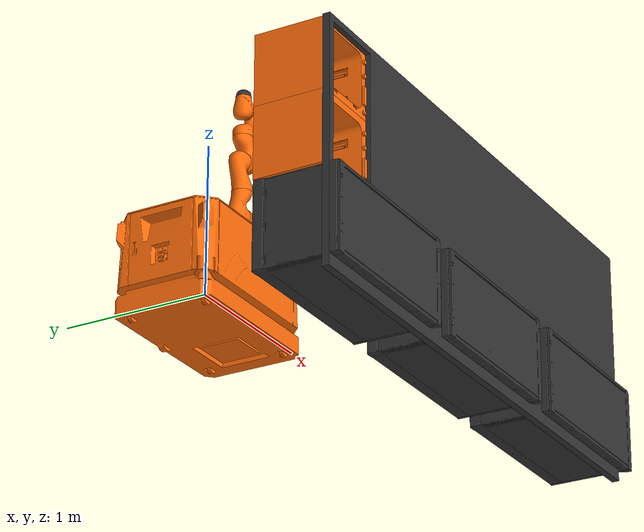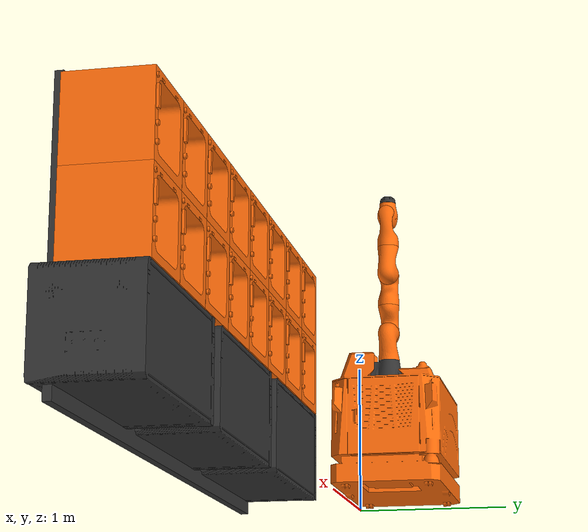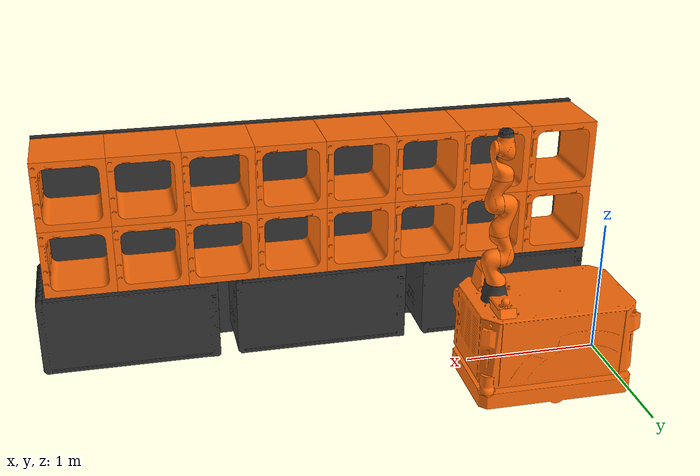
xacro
<?xml version="1.0"?>
<robot xmlns:xacro="http://www.ros.org/wiki/xacro"
       name="origins_base_scene" >
  <!-- X="0" Y="0.98" Z="0.08" r="0" p="-1.57" y="-1.57 This is the main file defining our robot arrangement and physical environment. -->
  <xacro:arg name="taskboard" default="false"/>
  <xacro:arg name="gazebo" default="false"/>

  <link name="origins_ground" />

  <xacro:include filename="$(find iiwa_description)/urdf/incubator.xacro" />
  <xacro:incubator prefix="2" connected_to="origins_ground" X="0" Y="-0.3" Z="1.69" r="0.0" p="1.57" y="0.0"/>
  <xacro:incubator prefix="4" connected_to="origins_ground" X="2" Y="-0.3" Z="1.69" r="0.0" p="1.57" y="0.0"/>

  <!--correct-->

  <xacro:include filename="$(find iiwa_description)/urdf/console.xacro" />
  <xacro:console prefix="2" connected_to="origins_ground" X="0" Y="-0.92" Z="0.08" r="0" p="-1.57" y="-1.57"/>

  <xacro:include filename="$(find iiwa_description)/urdf/right_panel.xacro" />
  <xacro:right_panel prefix="1" connected_to="origins_ground" X="0" Y="-0.8" Z="0" r="0" p="0" y="-1.57"/>

  <xacro:include filename="$(find iiwa_description)/urdf/amr.xacro" />
  <xacro:amr connected_to="origins_ground"/>

  <!-- Import Rviz colors -->
  <xacro:include filename="$(find iiwa_description)/urdf/materials.xacro" />
  <!--Import the lbr iiwa macro -->
  <xacro:include filename="$(find iiwa_description)/urdf/iiwa7.xacro"/>

  <xacro:arg name="hardware_interface" default="PositionJointInterface"/>
  <xacro:arg name="robot_name" default="iiwa"/>
  <xacro:arg name="origin_xyz" default="0.96 0.36 0.67"/>
  <xacro:arg name="origin_rpy" default="0 0 1.57"/>

  <!--iiwa-->
  <xacro:iiwa7 hardware_interface="$(arg hardware_interface)" robot_name="$(arg robot_name)" parent="amr_link">
    <origin xyz="$(arg origin_xyz)" rpy="$(arg origin_rpy)" />
  </xacro:iiwa7>

  <!-- The "world" link definition should be removed, but apparently it is necessary for Gazebo -->
  <link name="world" />
  <joint name="world_joint" type="fixed">
    <parent link="world" />
    <child link="origins_ground" />
    <origin xyz="0.0 0.0 0.0" rpy="0.0 0.0 0.0" />
  </joint>
  <gazebo>
      <plugin name="gazebo_ros_control" filename="libgazebo_ros_control.so">
        <robotNamespace>/</robotNamespace>
        <robotSimType>gazebo_ros_control/DefaultRobotHWSim</robotSimType>
      </plugin>
    </gazebo>

</robot>

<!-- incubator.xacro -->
<robot xmlns:xacro="https://ros.org/wiki/xacro">
  <!-- Here we define the 2 parameters of the macro -->
  <xacro:macro name="incubator" params="prefix connected_to X Y Z r p y">

    <!-- Create a fixed joint with a parameterized name. -->
    <joint name="${prefix}_incubator_joint0" type="fixed">
      <!-- The parent link must be read from the robot model it is attached to. -->
      <parent link="${connected_to}"/>
      <child link="${prefix}_incubator_link0"/>
      <!-- The tool is directly attached to the flange. -->
      <origin rpy="${r} ${p} ${y}" xyz="${X} ${Y} ${Z}"/>
    </joint>
    <link name="${prefix}_incubator_link0">
      <visual>
        <geometry>
          <!-- The path to the visual meshes in the package. -->
          <mesh filename="package://iiwa_description/meshes/Part1.STL"/>
        </geometry>
        <origin rpy="1.57 0 0" xyz="0 0 0"/>
        <material name="Orange"/>
      </visual>
      <collision>
        <geometry>
          <mesh filename="package://iiwa_description/meshes/Part1.STL"/>
        </geometry>
        <origin rpy="1.57 0 0" xyz="0 0 0"/>
      </collision>
    </link>

    <joint name="${prefix}_incubator_joint1" type="fixed">
      <!-- The parent link must be read from the robot model it is attached to. -->
      <parent link="${prefix}_incubator_link0"/>
      <child link="${prefix}_incubator_link1"/>
      <!-- The tool is directly attached to the flange. -->
    </joint>
    <link name="${prefix}_incubator_link1">
      <visual>
        <geometry>
          <!-- The path to the visual meshes in the package. -->
          <mesh filename="package://iiwa_description/meshes/Part1.STL"/>
        </geometry>
        <origin rpy="1.57 0 0" xyz="0 0 0.5"/>
        <material name="Orange"/>
      </visual>
      <collision>
        <geometry>
          <mesh filename="package://iiwa_description/meshes/Part1.STL"/>
        </geometry>
        <origin rpy="1.57 0 0" xyz="0 0 0.5"/>
      </collision>
    </link>

    <joint name="${prefix}_incubator_joint2" type="fixed">
      <!-- The parent link must be read from the robot model it is attached to. -->
      <parent link="${prefix}_incubator_link1"/>
      <child link="${prefix}_incubator_link2"/>
      <!-- The tool is directly attached to the flange. -->
    </joint>
    <link name="${prefix}_incubator_link2">
      <visual>
        <geometry>
          <!-- The path to the visual meshes in the package. -->
          <mesh filename="package://iiwa_description/meshes/Part1.STL"/>
        </geometry>
        <origin rpy="1.57 0 0" xyz="0 0 1"/>
        <material name="Orange"/>
      </visual>
      <collision>
        <geometry>
          <mesh filename="package://iiwa_description/meshes/Part1.STL"/>
        </geometry>
        <origin rpy="1.57 0 0" xyz="0 0 1"/>
      </collision>
    </link>

    <joint name="${prefix}_incubator_joint3" type="fixed">
      <!-- The parent link must be read from the robot model it is attached to. -->
      <parent link="${prefix}_incubator_link2"/>
      <child link="${prefix}_incubator_link3"/>
      <!-- The tool is directly attached to the flange. -->
    </joint>
    <link name="${prefix}_incubator_link3">
      <visual>
        <geometry>
          <!-- The path to the visual meshes in the package. -->
          <mesh filename="package://iiwa_description/meshes/Part1.STL"/>
        </geometry>
        <origin rpy="1.57 0 0" xyz="0 0 1.5"/>
        <material name="Orange"/>
      </visual>
      <collision>
        <geometry>
          <mesh filename="package://iiwa_description/meshes/Part1.STL"/>
        </geometry>
        <origin rpy="1.57 0 0" xyz="0 0 1.5"/>
      </collision>
    </link>

    <joint name="${prefix}_incubator_joint4" type="fixed">
      <!-- The parent link must be read from the robot model it is attached to. -->
      <parent link="${prefix}_incubator_link3"/>
      <child link="${prefix}_incubator_link4"/>
      <!-- The tool is directly attached to the flange. -->
    </joint>
    <link name="${prefix}_incubator_link4">
      <visual>
        <geometry>
          <!-- The path to the visual meshes in the package. -->
          <mesh filename="package://iiwa_description/meshes/Part1.STL"/>
        </geometry>
        <origin rpy="1.57 0 0" xyz="0.5 0 1.5"/>
        <material name="Orange"/>
      </visual>
      <collision>
        <geometry>
          <mesh filename="package://iiwa_description/meshes/Part1.STL"/>
        </geometry>
        <origin rpy="1.57 0 0" xyz="0.5 0 1.5"/>
      </collision>
    </link>

    <joint name="${prefix}_incubator_joint5" type="fixed">
      <!-- The parent link must be read from the robot model it is attached to. -->
      <parent link="${prefix}_incubator_link4"/>
      <child link="${prefix}_incubator_link5"/>
      <!-- The tool is directly attached to the flange. -->
    </joint>
    <link name="${prefix}_incubator_link5">
      <visual>
        <geometry>
          <!-- The path to the visual meshes in the package. -->
          <mesh filename="package://iiwa_description/meshes/Part1.STL"/>
        </geometry>
        <origin rpy="1.57 0 0" xyz="0.5 0 1"/>
        <material name="Orange"/>
      </visual>
      <collision>
        <geometry>
          <mesh filename="package://iiwa_description/meshes/Part1.STL"/>
        </geometry>
        <origin rpy="1.57 0 0" xyz="0.5 0 1"/>
      </collision>
    </link>

    <joint name="${prefix}_incubator_joint6" type="fixed">
      <!-- The parent link must be read from the robot model it is attached to. -->
      <parent link="${prefix}_incubator_link5"/>
      <child link="${prefix}_incubator_link6"/>
      <!-- The tool is directly attached to the flange. -->
    </joint>
    <link name="${prefix}_incubator_link6">
      <visual>
        <geometry>
          <!-- The path to the visual meshes in the package. -->
          <mesh filename="package://iiwa_description/meshes/Part1.STL"/>
        </geometry>
        <origin rpy="1.57 0 0" xyz="0.5 0 0.5"/>
        <material name="Orange"/>
      </visual>
      <collision>
        <geometry>
          <mesh filename="package://iiwa_description/meshes/Part1.STL"/>
        </geometry>
        <origin rpy="1.57 0 0" xyz="0.5 0 0.5"/>
      </collision>
    </link>

    <joint name="${prefix}_incubator_joint7" type="fixed">
      <!-- The parent link must be read from the robot model it is attached to. -->
      <parent link="${prefix}_incubator_link6"/>
      <child link="${prefix}_incubator_link7"/>
      <!-- The tool is directly attached to the flange. -->
    </joint>
    <link name="${prefix}_incubator_link7">
      <visual>
        <geometry>
          <!-- The path to the visual meshes in the package. -->
          <mesh filename="package://iiwa_description/meshes/Part1.STL"/>
        </geometry>
        <origin rpy="1.57 0 0" xyz="0.5 0 0"/>
        <material name="Orange"/>
      </visual>
      <collision>
        <geometry>
          <mesh filename="package://iiwa_description/meshes/Part1.STL"/>
        </geometry>
        <origin rpy="1.57 0 0" xyz="0.5 0 0"/>
      </collision>
    </link>

  </xacro:macro>
</robot>

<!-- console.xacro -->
<robot xmlns:xacro="https://ros.org/wiki/xacro">
  <!-- Here we define the 2 parameters of the macro -->
  <xacro:macro name="console" params="prefix connected_to X Y Z r p y">

    <!-- Create a fixed joint with a parameterized name. -->
    <joint name="${prefix}_console_joint0" type="fixed">
      <!-- The parent link must be read from the robot model it is attached to. -->
      <parent link="${connected_to}"/>
      <child link="${prefix}_console_link0"/>
      <!-- The tool is directly attached to the flange. -->
      <origin rpy="${r} ${p} ${y}" xyz="${X} ${Y} ${Z}"/>
    </joint>
    <link name="${prefix}_console_link0">
      <visual>
        <geometry>
          <!-- The path to the visual meshes in the package. -->
          <mesh filename="package://iiwa_description/meshes/supercomputer.STL"/>
        </geometry>
        <origin rpy="0 0 0" xyz="0 0 0"/>
        <material name="Grey"/>
      </visual>
      <collision>
        <geometry>
          <mesh filename="package://iiwa_description/meshes/supercomputer.STL"/>
        </geometry>
      </collision>
    </link>

    <joint name="${prefix}_console_joint1" type="fixed">
      <!-- The parent link must be read from the robot model it is attached to. -->
      <parent link="${prefix}_console_link0"/>
      <child link="${prefix}_console_link1"/>
      <!-- The tool is directly attached to the flange. -->
    </joint>
    <link name="${prefix}_console_link1">
      <visual>
        <geometry>
          <!-- The path to the visual meshes in the package. -->
          <mesh filename="package://iiwa_description/meshes/supercomputer.STL"/>
        </geometry>
        <origin rpy="0 0 0" xyz="0 1.4 0"/>
        <material name="Grey"/>
      </visual>
      <collision>
        <geometry>
          <mesh filename="package://iiwa_description/meshes/supercomputer.STL"/>
        </geometry>
      </collision>
    </link>

    <joint name="${prefix}_console_joint2" type="fixed">
      <!-- The parent link must be read from the robot model it is attached to. -->
      <parent link="${prefix}_console_link1"/>
      <child link="${prefix}_console_link2"/>
      <!-- The tool is directly attached to the flange. -->
    </joint>
    <link name="${prefix}_console_link2">
      <visual>
        <geometry>
          <!-- The path to the visual meshes in the package. -->
          <mesh filename="package://iiwa_description/meshes/supercomputer.STL"/>
        </geometry>
        <origin rpy="0 0 0" xyz="0 2.8 0"/>
        <material name="Grey"/>
      </visual>
      <collision>
        <geometry>
          <mesh filename="package://iiwa_description/meshes/supercomputer.STL"/>
        </geometry>
      </collision>
    </link>

  </xacro:macro>
</robot>

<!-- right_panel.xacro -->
<robot xmlns:xacro="https://ros.org/wiki/xacro">
  <!-- Here we define the 2 parameters of the macro -->
  <xacro:macro name="right_panel" params="prefix connected_to X Y Z r p y">

    <!-- Create a fixed joint with a parameterized name. -->
    <joint name="${prefix}_right_panel_joint" type="fixed">
      <!-- The parent link must be read from the robot model it is attached to. -->
      <parent link="${connected_to}"/>
      <child link="${prefix}_right_panel_link"/>
      <!-- The tool is directly attached to the flange. -->
      <origin rpy="${r} ${p} ${y}" xyz="${X} ${Y} ${Z}"/>
    </joint>

    <link name="${prefix}_right_panel_link">
      <visual>
        <geometry>
          <!-- The path to the visual meshes in the package. -->
          <mesh filename="package://iiwa_description/meshes/right_panel.stl"/>
        </geometry>
        <origin rpy="0 0 0" xyz="0 0 0"/>
        <material name="Grey"/>
      </visual>
      <collision>
        <geometry>
          <mesh filename="package://iiwa_description/meshes/right_panel.stl"/>
        </geometry>
      </collision>
    </link>
  </xacro:macro>
</robot>

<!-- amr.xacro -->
<robot xmlns:xacro="https://ros.org/wiki/xacro">
  <!-- Here we define the 2 parameters of the macro -->
  <xacro:macro name="amr" params="connected_to">

    <!-- Create a fixed joint with a parameterized name. -->
    <joint name="amr_joint" type="prismatic">
      <!-- The parent link must be read from the robot model it is attached to. -->
      <parent link="${connected_to}"/>
      <child link="amr_link"/>
      <!-- The tool is directly attached to the flange. -->
      <origin rpy="0 0 0" xyz="0 0 0"/>
      <limit effort="2000.0" lower="-10" upper="10" velocity="0.5"/>
    </joint>
    <link name="amr_link">
      <visual>
        <geometry>
          <!-- The path to the visual meshes in the package. -->
          <mesh filename="package://iiwa_description/meshes/kuka_amr.STL"/>
        </geometry>
        <material name="Orange"/>
      </visual>
      <collision>
        <geometry>
          <mesh filename="package://iiwa_description/meshes/kuka_amr.STL"/>
        </geometry>
      </collision>
    </link>
  </xacro:macro>
</robot>

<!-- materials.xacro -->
<robot>

  <material name="Black">
    <color rgba="0.0 0.0 0.0 1.0"/>
  </material>

  <material name="Blue">
    <color rgba="0.0 0.0 0.8 1.0"/>
  </material>

  <material name="Green">
    <color rgba="0.0 0.8 0.0 1.0"/>
  </material>

  <material name="Grey">
    <color rgba="0.2 0.2 0.2 1.0"/>
  </material>

  <material name="Orange">
    <color rgba="${255/255} ${108/255} ${10/255} 1.0"/>
  </material>

  <material name="Brown">
    <color rgba="${222/255} ${207/255} ${195/255} 1.0"/>
  </material>

  <material name="Red">
    <color rgba="0.8 0.0 0.0 1.0"/>
  </material>

  <material name="White">
    <color rgba="1.0 1.0 1.0 1.0"/>
  </material>

</robot>

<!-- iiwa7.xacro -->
<robot xmlns:xacro="http://www.ros.org/wiki/xacro">

  <!-- Import all Gazebo-customization elements, including Gazebo colors -->
  <xacro:include filename="$(find iiwa_description)/urdf/iiwa.gazebo.xacro" />
  <!-- Import Transmissions -->
  <xacro:include filename="$(find iiwa_description)/urdf/iiwa.transmission.xacro" />
  <!-- Include Utilities -->
  <xacro:include filename="$(find iiwa_description)/urdf/utilities.xacro" />

  <!-- some constants -->
  <xacro:property name="safety_controller_k_pos" value="100" />
  <xacro:property name="safety_controller_k_vel" value="2" />
  <xacro:property name="joint_damping" value="0.5" />
  <xacro:property name="max_effort" value="300"/>
  <xacro:property name="max_velocity" value="10"/>

  <xacro:macro name="iiwa7" params="parent hardware_interface robot_name *origin">

    <!--joint between {parent} and link_0-->
    <joint name="${parent}_${robot_name}_joint" type="fixed">
      <xacro:insert_block name="origin"/>
      <parent link="${parent}"/>
      <child link="${robot_name}_link_0"/>
    </joint>

    <link name="${robot_name}_link_0">
      <inertial>
        <origin xyz="-0.1 0 0.07" rpy="0 0 0"/>
        <mass value="5"/>
        <inertia ixx="0.05"  ixy="0"  ixz="0" iyy="0.06" iyz="0" izz="0.03" />
      </inertial>

      <visual>
        <origin xyz="0 0 0" rpy="0 0 0"/>
        <geometry>
          <mesh filename="package://iiwa_description/meshes/iiwa7/visual/link_0.stl"/>
        </geometry>
        <material name="Grey"/>
      </visual>

      <collision>
        <origin xyz="0 0 0" rpy="0 0 0"/>
        <geometry>
          <mesh filename="package://iiwa_description/meshes/iiwa7/collision/link_0.stl"/>
        </geometry>
      </collision>

    </link>

    <!-- joint between link_0 and link_1 -->
    <joint name="${robot_name}_joint_1" type="revolute">
      <parent link="${robot_name}_link_0"/>
      <child link="${robot_name}_link_1"/>
      <origin xyz="0 0 0.15" rpy="0 0 0"/>
      <axis xyz="0 0 1"/>
      <limit lower="${-170 * PI / 180}" upper="${170 * PI / 180}"
             effort="${max_effort}" velocity="${max_velocity}" />
      <safety_controller soft_lower_limit="${-168 * PI / 180}"
                         soft_upper_limit="${168 * PI / 180}"
                         k_position="${safety_controller_k_pos}"
                         k_velocity="${safety_controller_k_vel}"/>
      <dynamics damping="${joint_damping}"/>
    </joint>

    <link name="${robot_name}_link_1">
      <inertial>
        <origin xyz="0 -0.03 0.12" rpy="0 0 0"/>
        <mass value="3.4525"/>
        <inertia ixx="0.02183"  ixy="0"  ixz="0" iyy="0.007703" iyz="-0.003887" izz="0.02083" />
      </inertial>
      <visual>
        <origin xyz="0 0 0.0075" rpy="0 0 0"/>
        <geometry>
          <mesh filename="package://iiwa_description/meshes/iiwa7/visual/link_1.stl"/>
        </geometry>
        <material name="Orange"/>
      </visual>
      <collision>
        <origin xyz="0 0 0.0075" rpy="0 0 0"/>
        <geometry>
          <mesh filename="package://iiwa_description/meshes/iiwa7/collision/link_1.stl"/>
        </geometry>
      </collision>
    </link>

    <joint name="${robot_name}_joint_2" type="revolute">
      <parent link="${robot_name}_link_1"/>
      <child link="${robot_name}_link_2"/>
      <origin xyz="0 0 0.19" rpy="${PI / 2}   0 ${PI}"/>
      <axis xyz="0 0 1"/>
      <limit lower="${-120 * PI / 180}" upper="${120 * PI / 180}"
             effort="${max_effort}" velocity="${max_velocity}" />
      <safety_controller soft_lower_limit="${-118 * PI / 180}"
                         soft_upper_limit="${118 * PI / 180}"
                         k_position="${safety_controller_k_pos}"
                         k_velocity="${safety_controller_k_vel}"/>
      <dynamics damping="${joint_damping}"/>
    </joint>

    <link name="${robot_name}_link_2">
      <inertial>
        <origin xyz="0.0003 0.059 0.042" rpy="0 0 0"/>
        <mass value="3.4821"/>
        <inertia ixx="0.02076"  ixy="0"  ixz="-0.003626" iyy="0.02179" iyz="0" izz="0.00779" />
      </inertial>
      <visual>
        <origin xyz="0 0 0" rpy="0 0 0"/>
        <geometry>
          <mesh filename="package://iiwa_description/meshes/iiwa7/visual/link_2.stl"/>
        </geometry>
        <material name="Orange"/>
      </visual>

      <collision>
        <origin xyz="0 0 0" rpy="0 0 0"/>
        <geometry>
          <mesh filename="package://iiwa_description/meshes/iiwa7/collision/link_2.stl"/>
        </geometry>
      </collision>
    </link>

    <joint name="${robot_name}_joint_3" type="revolute">
      <parent link="${robot_name}_link_2"/>
      <child link="${robot_name}_link_3"/>
      <origin xyz="0 0.21 0" rpy="${PI / 2} 0 ${PI}"/>
      <axis xyz="0 0 1"/>
      <limit lower="${-170 * PI / 180}" upper="${170 * PI / 180}"
             effort="${max_effort}" velocity="${max_velocity}" />
      <safety_controller soft_lower_limit="${-168 * PI / 180}"
                         soft_upper_limit="${168 * PI / 180}"
                         k_position="${safety_controller_k_pos}"
                         k_velocity="${safety_controller_k_vel}"/>
      <dynamics damping="${joint_damping}"/>
    </joint>

    <link name="${robot_name}_link_3">
      <inertial>
        <origin xyz="0 0.03 0.13" rpy="0 0 0"/>
        <mass value="4.05623"/>
        <inertia ixx="0.03204"  ixy="0"  ixz="0" iyy="0.00972" iyz="0.006227" izz="0.03042" />
      </inertial>

      <visual>
        <origin xyz="0 0 -0.026" rpy="0 0 0"/>
        <geometry>
          <mesh filename="package://iiwa_description/meshes/iiwa7/visual/link_3.stl"/>
        </geometry>
        <material name="Orange"/>
      </visual>

      <collision>
        <origin xyz="0 0 -0.026" rpy="0 0 0"/>
        <geometry>
          <mesh filename="package://iiwa_description/meshes/iiwa7/collision/link_3.stl"/>
        </geometry>
      </collision>

    </link>

    <joint name="${robot_name}_joint_4" type="revolute">
      <parent link="${robot_name}_link_3"/>
      <child link="${robot_name}_link_4"/>
      <origin xyz="0 0 0.19" rpy="${PI / 2} 0 0"/>
      <axis xyz="0 0 1"/>
      <limit lower="${-120 * PI / 180}" upper="${120 * PI / 180}"
             effort="${max_effort}" velocity="${max_velocity}" />
      <safety_controller soft_lower_limit="${-118 * PI / 180}"
                         soft_upper_limit="${118 * PI / 180}"
                         k_position="${safety_controller_k_pos}"
                         k_velocity="${safety_controller_k_vel}"/>
      <dynamics damping="${joint_damping}"/>
    </joint>

    <link name="${robot_name}_link_4">
      <inertial>
        <origin xyz="0 0.067 0.034" rpy="0 0 0"/>
        <mass value="3.4822"/>
        <inertia ixx="0.02178"  ixy="0"  ixz="0" iyy="0.02075" iyz="-0.003625" izz="0.007785" />
      </inertial>

      <visual>
        <origin xyz="0 0 0" rpy="0 0 0"/>
        <geometry>
          <mesh filename="package://iiwa_description/meshes/iiwa7/visual/link_4.stl"/>
        </geometry>
        <material name="Orange"/>
      </visual>

      <collision>
        <origin xyz="0 0 0" rpy="0 0 0"/>
        <geometry>
          <mesh filename="package://iiwa_description/meshes/iiwa7/collision/link_4.stl"/>
        </geometry>
      </collision>
    </link>

    <joint name="${robot_name}_joint_5" type="revolute">
      <parent link="${robot_name}_link_4"/>
      <child link="${robot_name}_link_5"/>
      <origin xyz="0 0.21 0" rpy="${-PI / 2} ${PI} 0"/>
      <axis xyz="0 0 1"/>
      <limit lower="${-170 * PI / 180}" upper="${170 * PI / 180}"
             effort="${max_effort}" velocity="${max_velocity}" />
      <safety_controller soft_lower_limit="${-168 * PI / 180}"
                         soft_upper_limit="${168 * PI / 180}"
                         k_position="${safety_controller_k_pos}"
                         k_velocity="${safety_controller_k_vel}"/>
      <dynamics damping="${joint_damping}"/>
    </joint>

    <link name="${robot_name}_link_5">
      <inertial>
        <origin xyz="0.0001 0.021 0.076" rpy="0 0 0"/>
        <mass value="2.1633"/>
        <inertia ixx="0.01287"  ixy="0"  ixz="0" iyy="0.005708" iyz="-0.003946" izz="0.01112" />
      </inertial>

      <visual>
        <origin xyz="0 0 -0.026" rpy="0 0 0"/>
        <geometry>
          <mesh filename="package://iiwa_description/meshes/iiwa7/visual/link_5.stl"/>
        </geometry>
        <material name="Orange"/>
      </visual>

      <collision>
        <origin xyz="0 0 -0.026" rpy="0 0 0"/>
        <geometry>
          <mesh filename="package://iiwa_description/meshes/iiwa7/collision/link_5.stl"/>
        </geometry>
      </collision>
    </link>

    <joint name="${robot_name}_joint_6" type="revolute">
      <parent link="${robot_name}_link_5"/>
      <child link="${robot_name}_link_6"/>
      <origin xyz="0 0.06070 0.19" rpy="${PI / 2} 0 0"/>
      <axis xyz="0 0 1"/>
      <limit lower="${-120 * PI / 180}" upper="${120 * PI / 180}"
             effort="${max_effort}" velocity="${max_velocity}" />
      <safety_controller soft_lower_limit="${-118 * PI / 180}"
                         soft_upper_limit="${118 * PI / 180}"
                         k_position="${safety_controller_k_pos}"
                         k_velocity="${safety_controller_k_vel}"/>
      <dynamics damping="${joint_damping}"/>
    </joint>

    <link name="${robot_name}_link_6">
      <inertial>
        <origin xyz="0 0.0006 0.0004" rpy="0 0 0"/>
        <mass value="2.3466"/>
        <inertia ixx="0.006509"  ixy="0"  ixz="0" iyy="0.006259" iyz="0.00031891" izz="0.004527" />
      </inertial>

      <visual>
        <origin xyz="0 0 0" rpy="0 0 0"/>
        <geometry>
          <mesh filename="package://iiwa_description/meshes/iiwa7/visual/link_6.stl"/>
        </geometry>
        <material name="Orange"/>
      </visual>

      <collision>
        <origin xyz="0 0 0" rpy="0 0 0"/>
        <geometry>
          <mesh filename="package://iiwa_description/meshes/iiwa7/collision/link_6.stl"/>
        </geometry>
      </collision>
    </link>

    <joint name="${robot_name}_joint_7" type="revolute">
      <parent link="${robot_name}_link_6"/>
      <child link="${robot_name}_link_7"/>
      <origin xyz="0 0.081 0.06070" rpy="${- PI / 2} ${PI} 0"/>
      <axis xyz="0 0 1"/>
      <limit lower="${-175 * PI / 180}" upper="${175 * PI / 180}"
             effort="${max_effort}" velocity="${max_velocity}" />
      <safety_controller soft_lower_limit="${-173 * PI / 180}"
                         soft_upper_limit="${173 * PI / 180}"
                         k_position="${safety_controller_k_pos}"
                         k_velocity="${safety_controller_k_vel}"/>
      <dynamics damping="${joint_damping}"/>
    </joint>

    <link name="${robot_name}_link_7">
      <inertial>
        <origin xyz="0 0 0.02" rpy="0 0 0"/>
        <mass value="3.129"/>
        <inertia ixx="0.01464"  ixy="0.0005912"  ixz="0" iyy="0.01465" iyz="0" izz="0.002872" />
      </inertial>

      <visual>
        <origin xyz="0 0 -0.0005" rpy="0 0 0"/>
        <geometry>
          <mesh filename="package://iiwa_description/meshes/iiwa7/visual/link_7.stl"/>
        </geometry>
        <material name="Grey"/>
      </visual>

      <collision>
        <origin xyz="0 0 -0.0005" rpy="0 0 0"/>
        <geometry>
          <mesh filename="package://iiwa_description/meshes/iiwa7/collision/link_7.stl"/>
        </geometry>
      </collision>
    </link>

    <joint name="${robot_name}_joint_ee" type="fixed">
      <parent link="${robot_name}_link_7"/>
      <child link="${robot_name}_link_ee"/>
      <origin xyz="0 0 0.045" rpy="0 0 0"/>
    </joint>

    <link name="${robot_name}_link_ee">
    </link>

    <!--Extensions -->
    <xacro:iiwa_gazebo robot_name="${robot_name}" />
    <xacro:iiwa_transmission hardware_interface="${hardware_interface}"/>

  </xacro:macro>

</robot>

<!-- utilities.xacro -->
<robot name="iiwa" xmlns:xacro="http://www.ros.org/wiki/xacro">

  <xacro:property name="PI" value="3.1415926535897931"/>

<!-- The following macros are adapted from the LWR 4 definitions of the RCPRG - https://github.com/RCPRG-ros-pkg/lwr_robot -->
  <!--Little helper macros to define the inertia matrix needed for links.-->
  <!--Cuboid-->
  <xacro:macro name="cuboid_inertia" params="width height length mass">
    <inertia ixx="${mass * (height * height + length * length) / 12)}"
             iyy="${mass * (width * width + length * length) / 12)}"
             izz="${mass * (width * width + height * height) / 12)}"
             ixy="0" iyz="0" ixz="0"/>
  </xacro:macro>

  <!--Cylinder: length is along the y-axis! -->
  <xacro:macro name="cylinder_inertia" params="radius length mass">
    <inertia ixx="${mass * (3 * radius * radius + length * length) / 12)}"
             iyy="${mass * radius* radius / 2)}"
             izz="${mass * (3 * radius * radius + length * length) / 12)}"
             ixy="0" iyz="0" ixz="0"/>
  </xacro:macro>

</robot>
